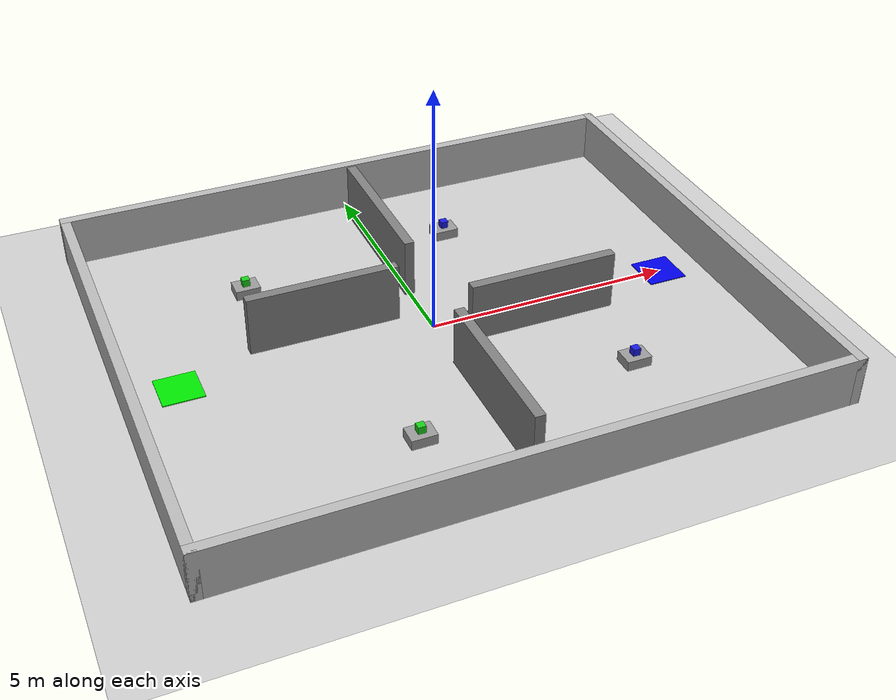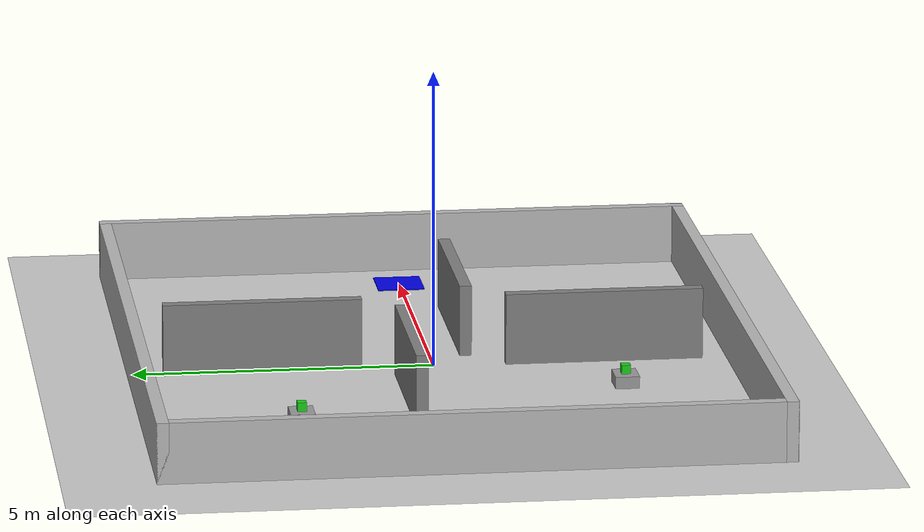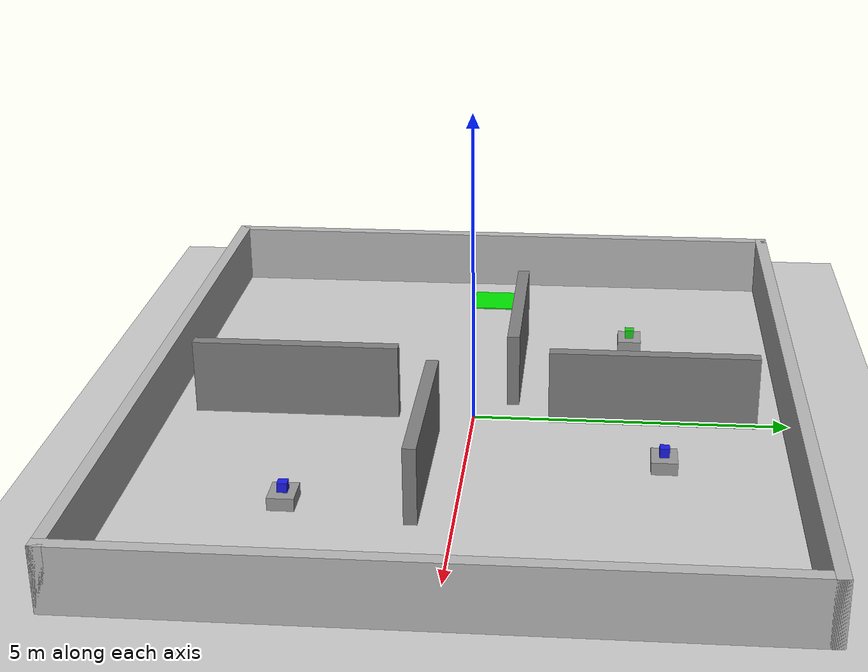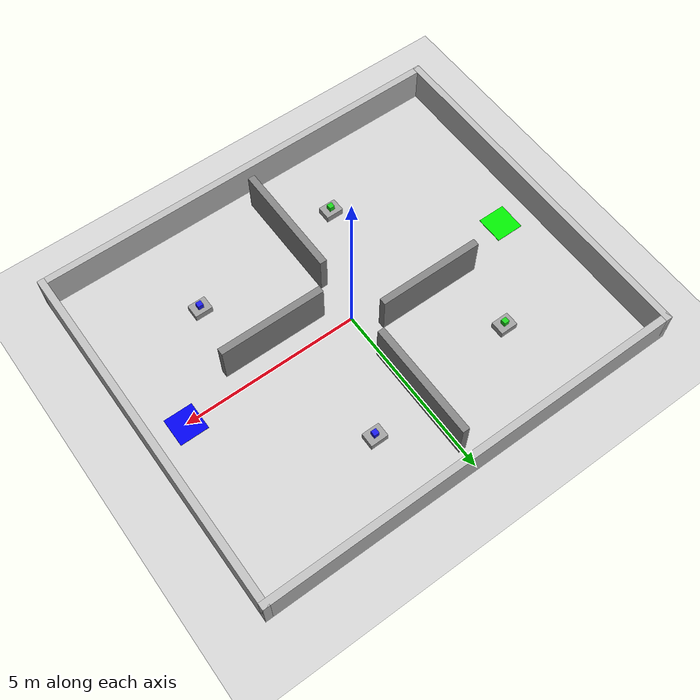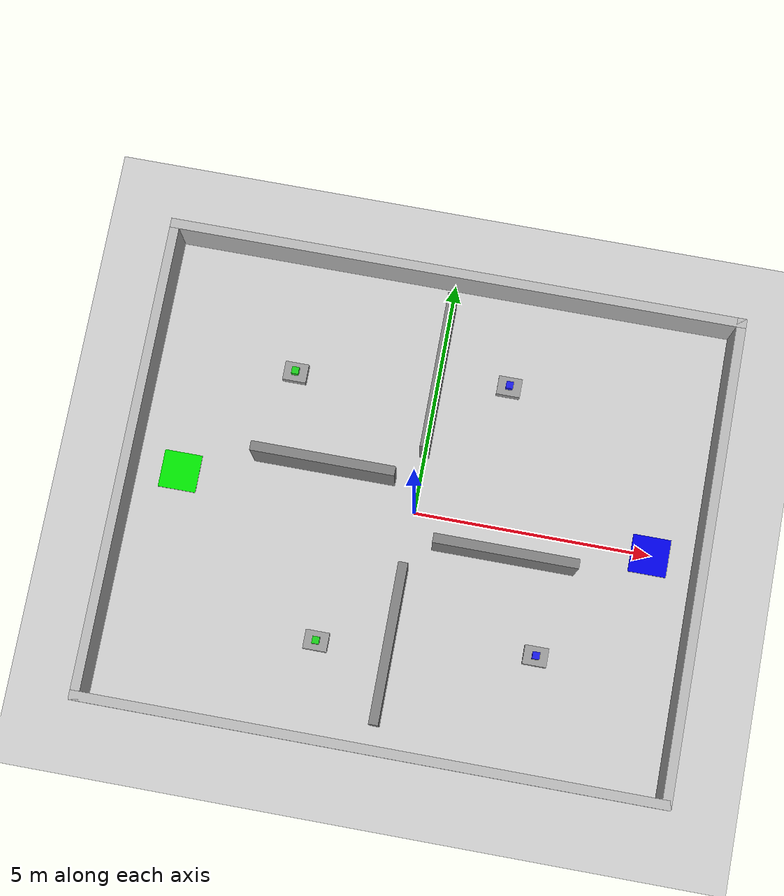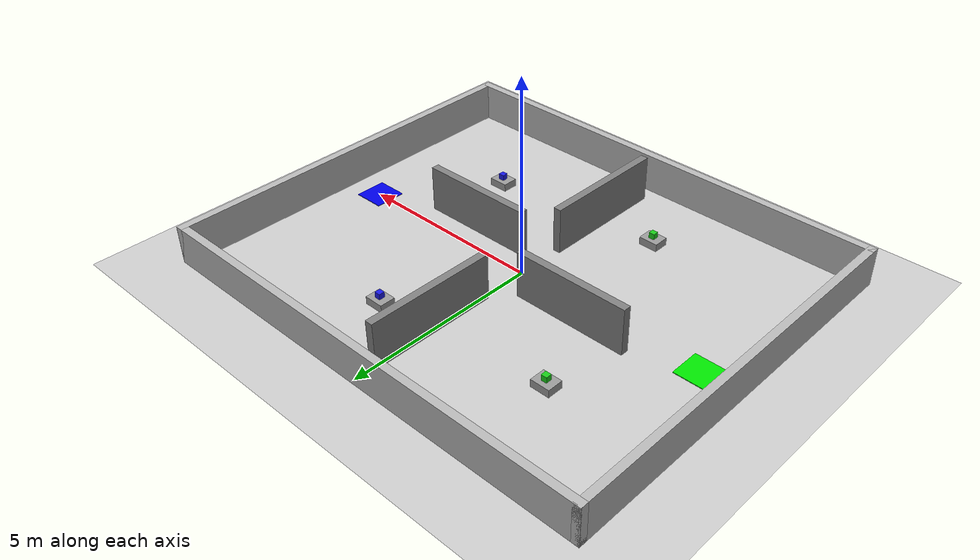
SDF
<?xml version="1.0" ?>
<sdf version="1.6">
  <world name="smart_warehouse">

    <physics type="ode">
      <real_time_factor>1.0</real_time_factor>
      <real_time_update_rate>1000</real_time_update_rate>
      <max_step_size>0.001</max_step_size>
    </physics>

    <include><uri>model://sun</uri></include>
    <include><uri>model://ground_plane</uri></include>

    <!-- ================================================================
         外墙  12m × 10m   x∈[-6,6]  y∈[-5,5]
         ================================================================ -->
    <model name='warehouse_walls'>
      <static>1</static>
      <link name='link'>
        <!-- 北墙 y=5 -->
        <collision name='n'><pose>0 5 0.5 0 0 0</pose><geometry><box><size>12.2 0.2 1.0</size></box></geometry></collision>
        <visual    name='vn'><pose>0 5 0.5 0 0 0</pose><geometry><box><size>12.2 0.2 1.0</size></box></geometry></visual>
        <!-- 南墙 y=-5 -->
        <collision name='s'><pose>0 -5 0.5 0 0 0</pose><geometry><box><size>12.2 0.2 1.0</size></box></geometry></collision>
        <visual    name='vs'><pose>0 -5 0.5 0 0 0</pose><geometry><box><size>12.2 0.2 1.0</size></box></geometry></visual>
        <!-- 西墙 x=-6 -->
        <collision name='w'><pose>-6 0 0.5 0 0 0</pose><geometry><box><size>0.2 10.2 1.0</size></box></geometry></collision>
        <visual    name='vw'><pose>-6 0 0.5 0 0 0</pose><geometry><box><size>0.2 10.2 1.0</size></box></geometry></visual>
        <!-- 东墙 x=6 -->
        <collision name='e'><pose>6 0 0.5 0 0 0</pose><geometry><box><size>0.2 10.2 1.0</size></box></geometry></collision>
        <visual    name='ve'><pose>6 0 0.5 0 0 0</pose><geometry><box><size>0.2 10.2 1.0</size></box></geometry></visual>
      </link>
    </model>

    <!-- 中央竖墙-上段：x=0, y=1.2→4.5，强迫左右两区上半部不连通 -->
    <model name='wall_center_top'>
      <static>1</static><pose>0 2.85 0.6 0 0 0</pose>
      <link name='l'>
        <collision name='c'><geometry><box><size>0.2 3.3 1.2</size></box></geometry></collision>
        <visual    name='v'><geometry><box><size>0.2 3.3 1.2</size></box></geometry>
          <material><ambient>0.4 0.4 0.4 1</ambient><diffuse>0.5 0.5 0.5 1</diffuse></material></visual>
      </link>
    </model>

    <!-- 中央竖墙-下段：x=0, y=-1.2→-4.5 -->
    <model name='wall_center_bot'>
      <static>1</static><pose>0 -2.85 0.6 0 0 0</pose>
      <link name='l'>
        <collision name='c'><geometry><box><size>0.2 3.3 1.2</size></box></geometry></collision>
        <visual    name='v'><geometry><box><size>0.2 3.3 1.2</size></box></geometry>
          <material><ambient>0.4 0.4 0.4 1</ambient><diffuse>0.5 0.5 0.5 1</diffuse></material></visual>
      </link>
    </model>

    <!-- 左侧横墙：y=0.6, x=-3.5→-0.5，封堵左区中央通道 -->
    <model name='wall_left_h'>
      <static>1</static><pose>-2.0 0.6 0.6 0 0 0</pose>
      <link name='l'>
        <collision name='c'><geometry><box><size>3.0 0.2 1.2</size></box></geometry></collision>
        <visual    name='v'><geometry><box><size>3.0 0.2 1.2</size></box></geometry>
          <material><ambient>0.4 0.4 0.4 1</ambient><diffuse>0.5 0.5 0.5 1</diffuse></material></visual>
      </link>
    </model>

    <!-- 右侧横墙：y=-0.6, x=0.5→3.5，封堵右区中央通道 -->
    <model name='wall_right_h'>
      <static>1</static><pose>2.0 -0.6 0.6 0 0 0</pose>
      <link name='l'>
        <collision name='c'><geometry><box><size>3.0 0.2 1.2</size></box></geometry></collision>
        <visual    name='v'><geometry><box><size>3.0 0.2 1.2</size></box></geometry>
          <material><ambient>0.4 0.4 0.4 1</ambient><diffuse>0.5 0.5 0.5 1</diffuse></material></visual>
      </link>
    </model>

    <model name='rack_1'><static>1</static><pose>-3.0 2.5 0.10 0 0 0</pose>
      <link name='l'>
        <collision name='c'><geometry><box><size>0.5 0.4 0.20</size></box></geometry></collision>
        <visual    name='v'><geometry><box><size>0.5 0.4 0.20</size></box></geometry>
          <material><script><name>Gazebo/Grey</name></script></material></visual>
      </link></model>

    <model name='rack_2'><static>1</static><pose>1.5 3.0 0.10 0 0 0</pose>
      <link name='l'>
        <collision name='c'><geometry><box><size>0.5 0.4 0.20</size></box></geometry></collision>
        <visual    name='v'><geometry><box><size>0.5 0.4 0.20</size></box></geometry>
          <material><script><name>Gazebo/Grey</name></script></material></visual>
      </link></model>

    <model name='rack_3'><static>1</static><pose>-1.5 -3.0 0.10 0 0 0</pose>
      <link name='l'>
        <collision name='c'><geometry><box><size>0.5 0.4 0.20</size></box></geometry></collision>
        <visual    name='v'><geometry><box><size>0.5 0.4 0.20</size></box></geometry>
          <material><script><name>Gazebo/Grey</name></script></material></visual>
      </link></model>

    <model name='rack_4'><static>1</static><pose>3.0 -2.5 0.10 0 0 0</pose>
      <link name='l'>
        <collision name='c'><geometry><box><size>0.5 0.4 0.20</size></box></geometry></collision>
        <visual    name='v'><geometry><box><size>0.5 0.4 0.20</size></box></geometry>
          <material><script><name>Gazebo/Grey</name></script></material></visual>
      </link></model>

    <model name='cargo_A1'>
      <static>1</static><pose>-3.0 2.5 0.275 0 0 0</pose>
      <link name='link'>
        <collision name='c'><geometry><box><size>0.15 0.15 0.15</size></box></geometry></collision>
        <visual    name='v'><geometry><box><size>0.15 0.15 0.15</size></box></geometry>
          <material><ambient>0.1 0.8 0.1 1</ambient><diffuse>0.1 0.8 0.1 1</diffuse></material></visual>
      </link>
    </model>

    <model name='cargo_A3'>
      <static>1</static><pose>-1.5 -3.0 0.275 0 0 0</pose>
      <link name='link'>
        <collision name='c'><geometry><box><size>0.15 0.15 0.15</size></box></geometry></collision>
        <visual    name='v'><geometry><box><size>0.15 0.15 0.15</size></box></geometry>
          <material><ambient>0.1 0.8 0.1 1</ambient><diffuse>0.1 0.8 0.1 1</diffuse></material></visual>
      </link>
    </model>

    <model name='cargo_B2'>
      <static>1</static><pose>1.5 3.0 0.275 0 0 0</pose>
      <link name='link'>
        <collision name='c'><geometry><box><size>0.15 0.15 0.15</size></box></geometry></collision>
        <visual    name='v'><geometry><box><size>0.15 0.15 0.15</size></box></geometry>
          <material><ambient>0.1 0.1 0.9 1</ambient><diffuse>0.1 0.1 0.9 1</diffuse></material></visual>
      </link>
    </model>

    <model name='cargo_B4'>
      <static>1</static><pose>3.0 -2.5 0.275 0 0 0</pose>
      <link name='link'>
        <collision name='c'><geometry><box><size>0.15 0.15 0.15</size></box></geometry></collision>
        <visual    name='v'><geometry><box><size>0.15 0.15 0.15</size></box></geometry>
          <material><ambient>0.1 0.1 0.9 1</ambient><diffuse>0.1 0.1 0.9 1</diffuse></material></visual>
      </link>
    </model>

    <model name='goal_A'>
      <static>1</static><pose>-5.0 0 0.01 0 0 0</pose>
      <link name='link'>
        <visual name='v'><geometry><box><size>0.8 0.8 0.02</size></box></geometry>
          <material><ambient>0 0.9 0 1</ambient><diffuse>0 0.9 0 1</diffuse></material></visual>
      </link>
    </model>
    <model name='goal_B'>
      <static>1</static><pose>5.0 0 0.01 0 0 0</pose>
      <link name='link'>
        <visual name='v'><geometry><box><size>0.8 0.8 0.02</size></box></geometry>
          <material><ambient>0 0 0.9 1</ambient><diffuse>0 0 0.9 1</diffuse></material></visual>
      </link>
    </model>

  </world>
</sdf>
